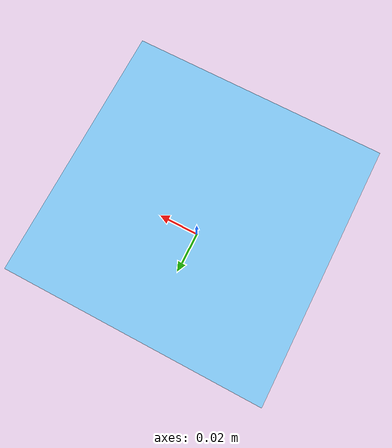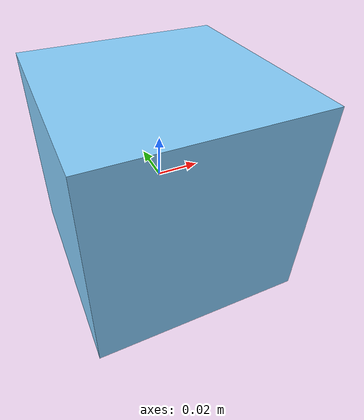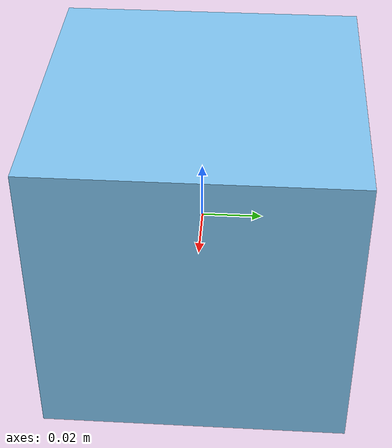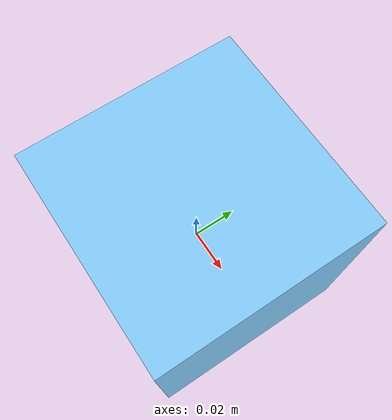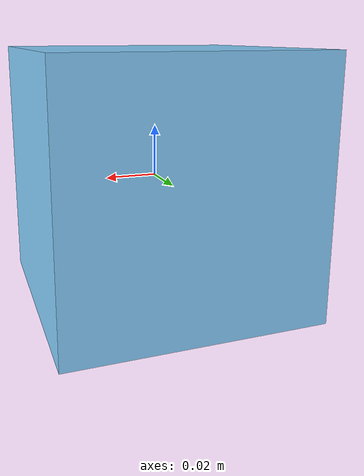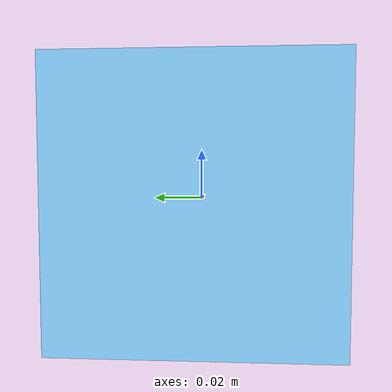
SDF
<?xml version="1.0" ?>
<sdf version='1.7'>
    <model name='car_camera'>
        <link name='car_camera'>
            <inertial>
                <pose>0 0 0 0 -0 0</pose>
                <mass>0.1</mass>
                <inertia>
                    <ixx>0.000166667</ixx>
                    <ixy>0</ixy>
                    <ixz>0</ixz>
                    <iyy>0.000166667</iyy>
                    <iyz>0</iyz>
                    <izz>0.000166667</izz>
                </inertia>
            </inertial>
            <collision name='car_camera_collision'>
                <pose>0 0 0 0 -0 3.14</pose>
                <geometry>
                    <box>
                        <size>0.1 0.1 0.1</size>
                    </box>
                </geometry>
                <surface>
                    <contact>
                        <ode/>
                    </contact>
                    <friction>
                        <ode/>
                    </friction>
                </surface>
            </collision>
            <visual name='car_camera_visual'>
                <pose>0 0 0 0 -0 3.14</pose>
                <geometry>
                    <box>
                        <size>0.1 0.1 0.1</size>
                    </box>
                </geometry>
                <material>
                    <diffuse> 0.52 0.8 0.98 1 </diffuse>
                    <specular> 0.2 0.2 0.2 0  </specular>
                    <emissive> 0 0 0 1 </emissive>
                    <ambient> 0.114 0.16 0.196 1 </ambient>
                </material>
            </visual>
            <sensor name='car_camera' type='camera'>
                <update_rate>24</update_rate>
                <visualize>1</visualize>
                <topic>camera</topic>
                <camera name='head'>
                    <horizontal_fov>1.39626</horizontal_fov>
                    <image>
                        <width>640</width>
                        <height>480</height>
                        <format>R8G8B8</format>
                    </image>
                    <clip>
                        <near>0.02</near>
                        <far>300</far>
                    </clip>
                </camera>
            </sensor>
        </link>
    </model>
</sdf>
